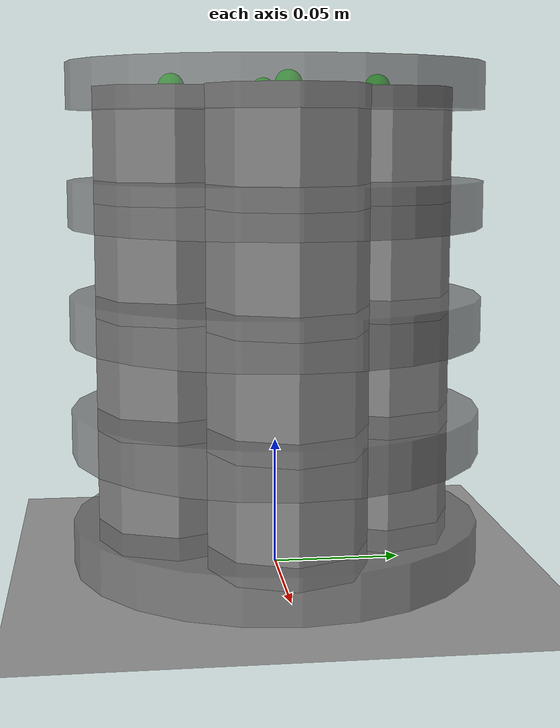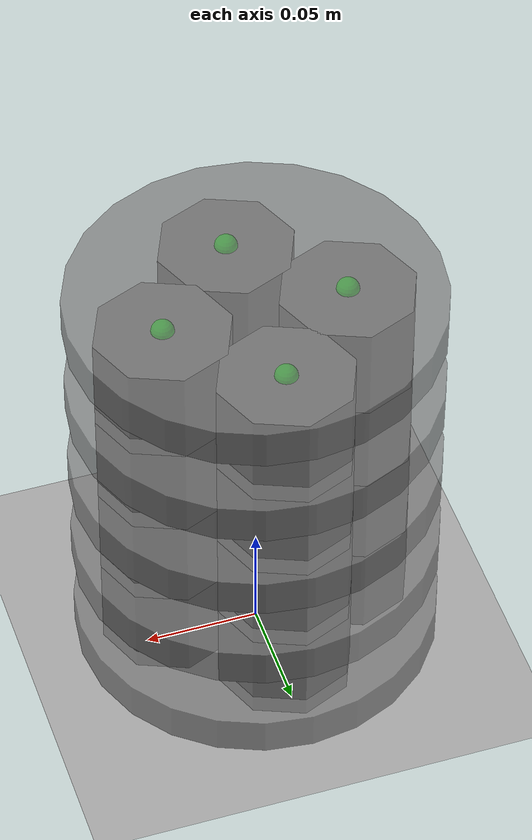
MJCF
<mujoco model="baloo_torso">
  <compiler angle="degree"/>
  <option timestep="0.01" integrator="implicitfast" cone="elliptic" jacobian="sparse" solver="Newton">
    <flag gravity="enable"/>
  </option>
  <size njmax="5000" nconmax="5000" nstack="5000000"/>
  <visual>
    <map stiffness="100" fogstart="10" fogend="15" zfar="40" shadowscale="0.5"/>
    <scale forcewidth="0.10000000000000001" contactwidth="0.074999999999999997" contactheight="0.025000000000000001" framelength="0.59999999999999998" framewidth="0.059999999999999998"/>
  </visual>
  <default>
    <default class="/">
      <default class="large_joint">
        <joint group="3" type="hinge" pos="0 0 0.022222222222222223" limited="true" stiffness="680" range="-18 18" damping="37.5"/>
        <geom type="cylinder" size="0.125 0.0088888888888888889" rgba="0.47058823529411764 0.47058823529411764 0.47058823529411764 0.69999999999999996"/>
      </default>
      <default class="medium_joint">
        <joint group="3" type="hinge" pos="0 0 0.022222222222222223" limited="true" stiffness="135" range="-22 22" damping="10"/>
        <geom type="cylinder" size="0.080000000000000002 0.0088888888888888889" rgba="0.47058823529411764 0.47058823529411764 0.47058823529411764 0.69999999999999996"/>
      </default>
      <default class="small_joint">
        <joint group="3" type="hinge" pos="0 0 0.022222222222222223" limited="true" stiffness="135" range="-22 22" damping="10"/>
        <geom type="cylinder" size="0.080000000000000002 0.0088888888888888889" rgba="0.47058823529411764 0.47058823529411764 0.47058823529411764 0.69999999999999996"/>
      </default>
    </default>
  </default>
  <extension>
    <plugin plugin="mujoco.sensor.joint_angle_estimator">
      <instance name="test"/>
    </plugin>
  </extension>
  <custom>
    <numeric name="num_disks" size="1" data="5"/>
  </custom>
  <asset>
    <texture name="texplane" type="2d" builtin="checker" mark="cross" width="512" height="512"/>
    <material name="matplane" class="/" texture="texplane" texuniform="true"/>
    <mesh name="SimpleChestMesh" class="/" file="/home/curtis/curtis_ws/src/curtis_sandbox/src/mujoco/models/baloo/meshes/SimpleChestMesh.stl"/>
    <mesh name="RightFrontWheelMesh" class="/" file="/home/curtis/curtis_ws/src/curtis_sandbox/src/mujoco/models/baloo/meshes/RightFrontWheelMesh.stl"/>
    <mesh name="EstopPlugMesh" class="/" file="/home/curtis/curtis_ws/src/curtis_sandbox/src/mujoco/models/baloo/meshes/EstopPlugMesh.stl"/>
    <mesh name="LeftBackWheelMesh" class="/" file="/home/curtis/curtis_ws/src/curtis_sandbox/src/mujoco/models/baloo/meshes/LeftBackWheelMesh.stl"/>
    <mesh name="PowerButtonMesh" class="/" file="/home/curtis/curtis_ws/src/curtis_sandbox/src/mujoco/models/baloo/meshes/PowerButtonMesh.stl"/>
    <mesh name="EthernetJackMesh" class="/" file="/home/curtis/curtis_ws/src/curtis_sandbox/src/mujoco/models/baloo/meshes/EthernetJackMesh.stl"/>
    <mesh name="StepperMesh" class="/" file="/home/curtis/curtis_ws/src/curtis_sandbox/src/mujoco/models/baloo/meshes/StepperMesh.stl"/>
    <mesh name="LinearActuatorMesh" class="/" file="/home/curtis/curtis_ws/src/curtis_sandbox/src/mujoco/models/baloo/meshes/LinearActuatorMesh.stl"/>
    <mesh name="RightBackWheelMesh" class="/" file="/home/curtis/curtis_ws/src/curtis_sandbox/src/mujoco/models/baloo/meshes/RightBackWheelMesh.stl"/>
    <mesh name="PneumaticInletMesh" class="/" file="/home/curtis/curtis_ws/src/curtis_sandbox/src/mujoco/models/baloo/meshes/PneumaticInletMesh.stl"/>
    <mesh name="ControlBoxMesh" class="/" file="/home/curtis/curtis_ws/src/curtis_sandbox/src/mujoco/models/baloo/meshes/ControlBoxMesh.stl"/>
    <mesh name="LeftBackWheelFootMesh" class="/" file="/home/curtis/curtis_ws/src/curtis_sandbox/src/mujoco/models/baloo/meshes/LeftBackWheelFootMesh.stl"/>
    <mesh name="meshed_cube" class="/" file="/home/curtis/curtis_ws/src/curtis_sandbox/src/mujoco/models/baloo/meshes/meshed_cube.stl"/>
    <mesh name="LeftBaseMesh" class="/" file="/home/curtis/curtis_ws/src/curtis_sandbox/src/mujoco/models/baloo/meshes/LeftBaseMesh.stl"/>
    <mesh name="BaseFrameMesh" class="/" file="/home/curtis/curtis_ws/src/curtis_sandbox/src/mujoco/models/baloo/meshes/BaseFrameMesh.stl"/>
    <mesh name="SimpleShoulderMesh" class="/" file="/home/curtis/curtis_ws/src/curtis_sandbox/src/mujoco/models/baloo/meshes/SimpleShoulderMesh.stl"/>
    <mesh name="LeftFrontWheelMesh" class="/" file="/home/curtis/curtis_ws/src/curtis_sandbox/src/mujoco/models/baloo/meshes/LeftFrontWheelMesh.stl"/>
    <mesh name="RightFrontWheelFootMesh" class="/" file="/home/curtis/curtis_ws/src/curtis_sandbox/src/mujoco/models/baloo/meshes/RightFrontWheelFootMesh.stl"/>
    <mesh name="LeftFrontWheelFootMesh" class="/" file="/home/curtis/curtis_ws/src/curtis_sandbox/src/mujoco/models/baloo/meshes/LeftFrontWheelFootMesh.stl"/>
    <mesh name="LCDScreenMesh" class="/" file="/home/curtis/curtis_ws/src/curtis_sandbox/src/mujoco/models/baloo/meshes/LCDScreenMesh.stl"/>
    <mesh name="RightBaseMesh" class="/" file="/home/curtis/curtis_ws/src/curtis_sandbox/src/mujoco/models/baloo/meshes/RightBaseMesh.stl"/>
    <mesh name="RightBackWheelFootMesh" class="/" file="/home/curtis/curtis_ws/src/curtis_sandbox/src/mujoco/models/baloo/meshes/RightBackWheelFootMesh.stl"/>
    <material name="vention_blue" class="/" reflectance="1" rgba="0 0.15686274509803921 0.31372549019607843 1"/>
    <material name="matte_black" class="/" reflectance="0.20000000000000001" rgba="0 0 0 1"/>
    <material name="cream" class="/" reflectance="0.20000000000000001" rgba="0.90000000000000002 0.90000000000000002 0.90000000000000002 1"/>
    <material name="silver" class="/" reflectance="0.80000000000000004" rgba="0.80000000000000004 0.80000000000000004 0.80000000000000004 1"/>
    <material name="red" class="/" reflectance="0.80000000000000004" rgba="0.80000000000000004 0.20000000000000001 0.20000000000000001 1"/>
    <material name="lcd_blue" class="/" reflectance="0.80000000000000004" rgba="0.20000000000000001 0.20000000000000001 0.80000000000000004 1"/>
    <material name="green" class="/" reflectance="0.80000000000000004" rgba="0.20000000000000001 0.80000000000000004 0.20000000000000001 1"/>
  </asset>
  <worldbody>
    <geom name="world" class="/" type="plane" condim="1" size="0 0 1" material="matplane"/>
    <light name="//unnamed_light_0" class="/" directional="true" pos="0 0 4" dir="0 0 -1" diffuse="0.59999999999999998 0.59999999999999998 0.59999999999999998" specular="0.20000000000000001 0.20000000000000001 0.20000000000000001"/>
    <camera name="fixedcam" class="/" pos="-1.357 2.722 2.4470000000000001" xyaxes="-0.88200000000000001 -0.47199999999999998 0 0.23799999999999999 -0.44600000000000001 0.86299999999999999"/>
    <body name="0_B0" childclass="small_joint" pos="0 0 0.011111111111111112" euler="0 0 0">
      <geom name="0_G0"/>
      <inertial pos="0 0 0" mass="0.26519999999999999" diaginertia="0.00043523358024691365 0.00043523358024691365 0.00084864000000000001"/>
      <site name="xsite0" rgba="0 1 0 1" pos="0.040000000000000001 0 0"/>
      <site name="-xsite0" rgba="0 1 0 1" pos="-0.040000000000000001 0 0"/>
      <site name="ysite0" rgba="0 1 0 1" pos="0 0.040000000000000001 0"/>
      <site name="-ysite0" rgba="0 1 0 1" pos="0 -0.040000000000000001 0"/>
      <body name="0_B1" pos="0 0 0.044444444444444446">
        <geom name="0_G1"/>
        <inertial pos="0 0 0" mass="0.26519999999999999" diaginertia="0.00043523358024691365 0.00043523358024691365 0.00084864000000000001"/>
        <joint name="0_Jx_0" pos="0 0 -0.022222222222222223" axis="1 0 0"/>
        <joint name="0_Jy_0" pos="0 0 -0.022222222222222223" axis="0 1 0"/>
        <site name="rotation_center1" rgba="1 0 0 1" pos="0 0 -0.022222222222222223"/>
        <site name="xsite1" rgba="0 1 0 1" pos="0.040000000000000001 0 0"/>
        <site name="-xsite1" rgba="0 1 0 1" pos="-0.040000000000000001 0 0"/>
        <site name="ysite1" rgba="0 1 0 1" pos="0 0.040000000000000001 0"/>
        <site name="-ysite1" rgba="0 1 0 1" pos="0 -0.040000000000000001 0"/>
        <body name="0_B2" pos="0 0 0.044444444444444446">
          <geom name="0_G2"/>
          <inertial pos="0 0 0" mass="0.26519999999999999" diaginertia="0.00043523358024691365 0.00043523358024691365 0.00084864000000000001"/>
          <joint name="0_Jx_1" pos="0 0 -0.022222222222222223" axis="1 0 0"/>
          <joint name="0_Jy_1" pos="0 0 -0.022222222222222223" axis="0 1 0"/>
          <site name="rotation_center2" rgba="1 0 0 1" pos="0 0 -0.022222222222222223"/>
          <site name="xsite2" rgba="0 1 0 1" pos="0.040000000000000001 0 0"/>
          <site name="-xsite2" rgba="0 1 0 1" pos="-0.040000000000000001 0 0"/>
          <site name="ysite2" rgba="0 1 0 1" pos="0 0.040000000000000001 0"/>
          <site name="-ysite2" rgba="0 1 0 1" pos="0 -0.040000000000000001 0"/>
          <body name="0_B3" pos="0 0 0.044444444444444446">
            <geom name="0_G3"/>
            <inertial pos="0 0 0" mass="0.26519999999999999" diaginertia="0.00043523358024691365 0.00043523358024691365 0.00084864000000000001"/>
            <joint name="0_Jx_2" pos="0 0 -0.022222222222222223" axis="1 0 0"/>
            <joint name="0_Jy_2" pos="0 0 -0.022222222222222223" axis="0 1 0"/>
            <site name="rotation_center3" rgba="1 0 0 1" pos="0 0 -0.022222222222222223"/>
            <site name="xsite3" rgba="0 1 0 1" pos="0.040000000000000001 0 0"/>
            <site name="-xsite3" rgba="0 1 0 1" pos="-0.040000000000000001 0 0"/>
            <site name="ysite3" rgba="0 1 0 1" pos="0 0.040000000000000001 0"/>
            <site name="-ysite3" rgba="0 1 0 1" pos="0 -0.040000000000000001 0"/>
            <body name="0_B4" pos="0 0 0.044444444444444446">
              <geom name="0_G4"/>
              <inertial pos="0 0 0" mass="0.26519999999999999" diaginertia="0.00043523358024691365 0.00043523358024691365 0.00084864000000000001"/>
              <joint name="0_Jx_3" pos="0 0 -0.022222222222222223" axis="1 0 0"/>
              <joint name="0_Jy_3" pos="0 0 -0.022222222222222223" axis="0 1 0"/>
              <site name="rotation_center4" rgba="1 0 0 1" pos="0 0 -0.022222222222222223"/>
              <site name="xsite4" rgba="0 1 0 1" pos="0.040000000000000001 0 0"/>
              <site name="-xsite4" rgba="0 1 0 1" pos="-0.040000000000000001 0 0"/>
              <site name="ysite4" rgba="0 1 0 1" pos="0 0.040000000000000001 0"/>
              <site name="-ysite4" rgba="0 1 0 1" pos="0 -0.040000000000000001 0"/>
            </body>
          </body>
        </body>
      </body>
    </body>
  </worldbody>
  <tendon>
    <spatial name="xtest" class="/" width="0.029999999999999999">
      <site site="xsite0"/>
      <site site="xsite1"/>
      <site site="xsite2"/>
      <site site="xsite3"/>
      <site site="xsite4"/>
    </spatial>
    <spatial name="-xtest" class="/" width="0.029999999999999999">
      <site site="-xsite0"/>
      <site site="-xsite1"/>
      <site site="-xsite2"/>
      <site site="-xsite3"/>
      <site site="-xsite4"/>
    </spatial>
    <spatial name="ytest" class="/" width="0.029999999999999999">
      <site site="ysite0"/>
      <site site="ysite1"/>
      <site site="ysite2"/>
      <site site="ysite3"/>
      <site site="ysite4"/>
    </spatial>
    <spatial name="-ytest" class="/" width="0.029999999999999999">
      <site site="-ysite0"/>
      <site site="-ysite1"/>
      <site site="-ysite2"/>
      <site site="-ysite3"/>
      <site site="-ysite4"/>
    </spatial>
  </tendon>
  <actuator>
    <cylinder name="p0" class="/" ctrllimited="true" ctrlrange="0 1000" gear="500" tendon="xtest" timeconst="0.20000000000000001" diameter="0.050000000000000003"/>
    <cylinder name="p1" class="/" ctrllimited="true" ctrlrange="0 1000" gear="500" tendon="-xtest" timeconst="0.20000000000000001" diameter="0.050000000000000003"/>
    <cylinder name="p2" class="/" ctrllimited="true" ctrlrange="0 1000" gear="500" tendon="ytest" timeconst="0.20000000000000001" diameter="0.050000000000000003"/>
    <cylinder name="p3" class="/" ctrllimited="true" ctrlrange="0 1000" gear="500" tendon="-ytest" timeconst="0.20000000000000001" diameter="0.050000000000000003"/>
  </actuator>
  <sensor>
    <framequat name="0_B0_framequat" objtype="body" objname="0_B0"/>
    <framequat name="0_B4_framequat" objtype="body" objname="0_B4"/>
    <frameangvel name="0_B4_frameangvel" objtype="body" objname="0_B4" reftype="body" refname="0_B0"/>
    <plugin name="vive_tracker" plugin="mujoco.sensor.joint_angle_estimator" instance="test"/>
  </sensor>
</mujoco>
